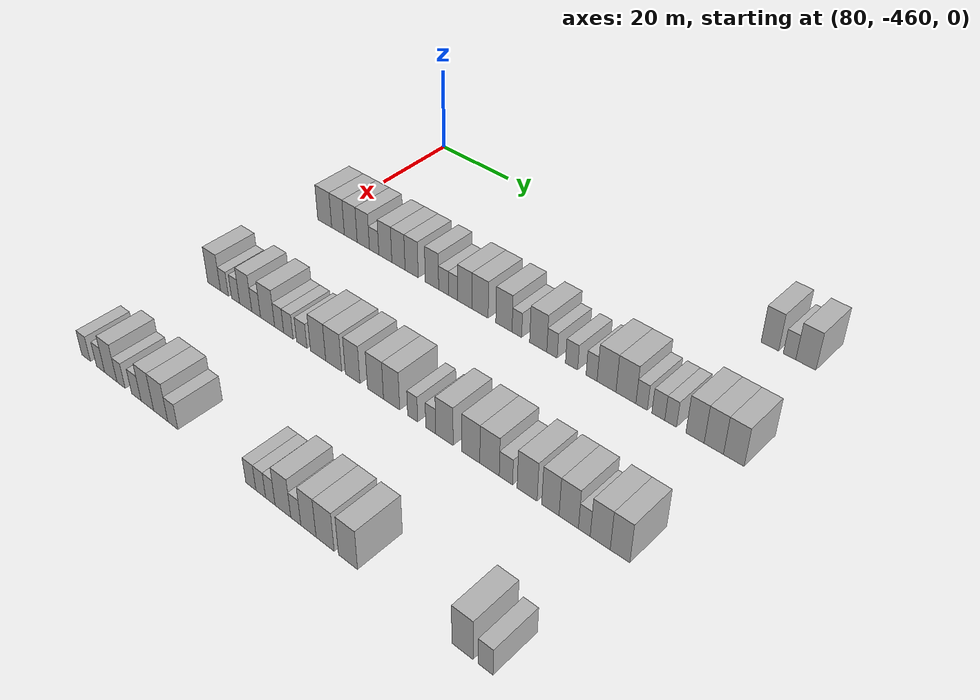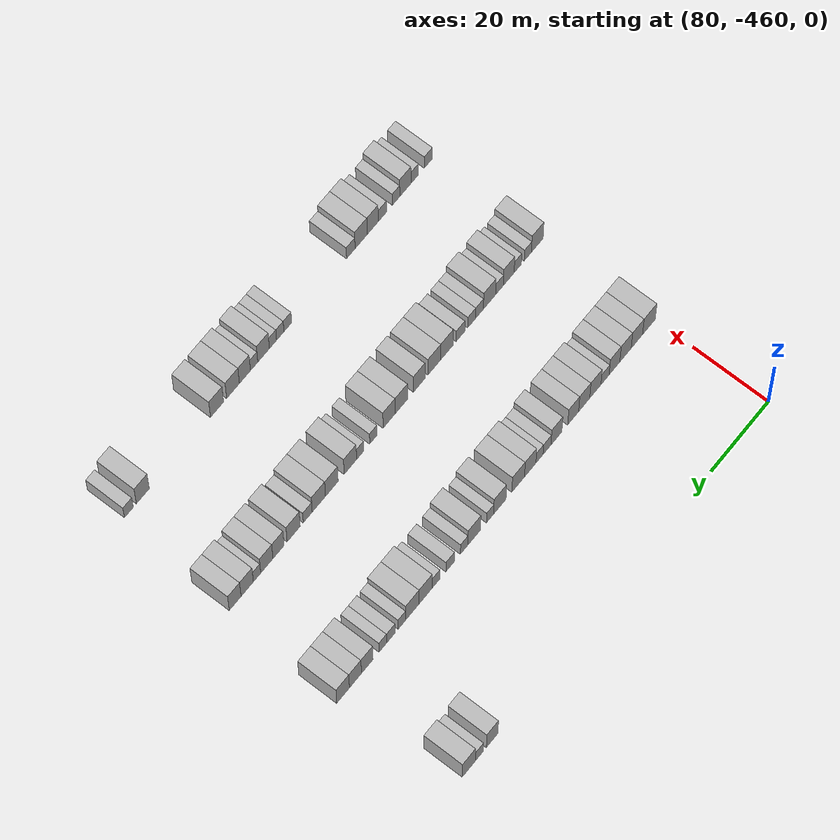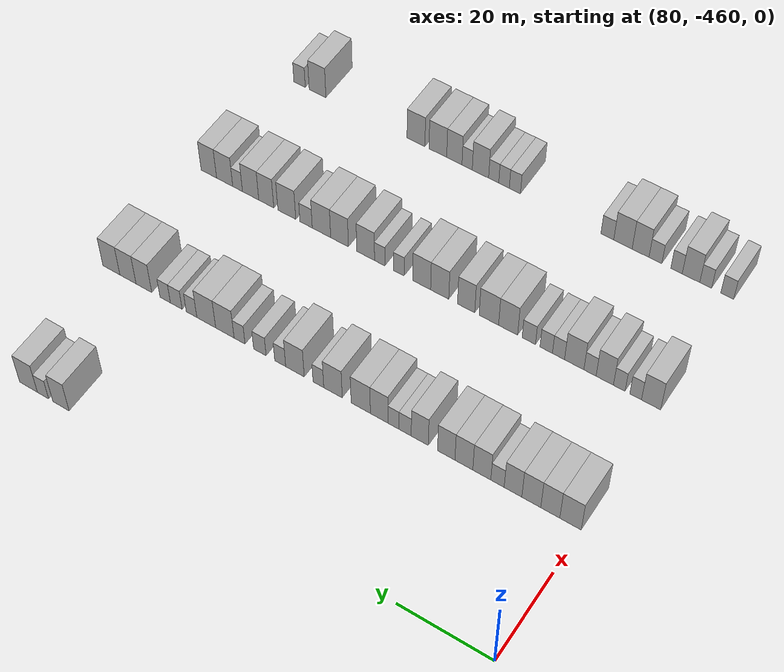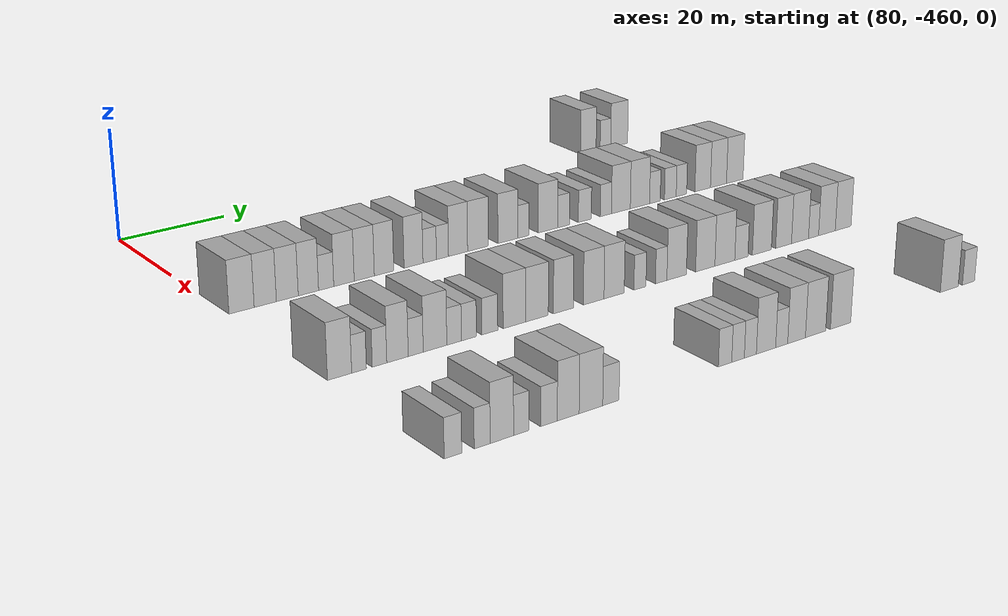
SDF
<sdf version="1.6">
 <world name="default">
  <model name="building_461">
   <static>1</static>
   <pose>85.0000 -365.3935 0 0.000000 0.000000 0.000000</pose>
   <link name="link">
    <pose>0 0 4.50 0 0 0</pose>
    <collision name="collision"><geometry><box><size>10.0000 3.8703 9.0000</size></box></geometry></collision>
    <visual name="visual">
     <cast_shadows>0</cast_shadows>
     <geometry><box><size>10.0000 3.8703 9.0000</size></box></geometry>
     <material>
      <script>
       <uri>model://HANNAS_wall/materials/scripts</uri>
       <uri>model://HANNAS_wall/materials/textures</uri>
       <name>vrc/HANNAS_wall</name>
      </script>
     </material>
    </visual>
   </link>
  </model>
  <model name="building_462">
   <static>1</static>
   <pose>85.0000 -361.1116 0 0.000000 0.000000 0.000000</pose>
   <link name="link">
    <pose>0 0 3.00 0 0 0</pose>
    <collision name="collision"><geometry><box><size>10.0000 2.6935 6.0000</size></box></geometry></collision>
    <visual name="visual">
     <cast_shadows>0</cast_shadows>
     <geometry><box><size>10.0000 2.6935 6.0000</size></box></geometry>
     <material>
      <script>
       <uri>model://HANNAS_wall/materials/scripts</uri>
       <uri>model://HANNAS_wall/materials/textures</uri>
       <name>vrc/HANNAS_wall</name>
      </script>
     </material>
    </visual>
   </link>
  </model>
  <model name="building_463">
   <static>1</static>
   <pose>85.0000 -357.6168 0 0.000000 0.000000 0.000000</pose>
   <link name="link">
    <pose>0 0 4.50 0 0 0</pose>
    <collision name="collision"><geometry><box><size>10.0000 4.2960 9.0000</size></box></geometry></collision>
    <visual name="visual">
     <cast_shadows>0</cast_shadows>
     <geometry><box><size>10.0000 4.2960 9.0000</size></box></geometry>
     <material>
      <script>
       <uri>model://HANNAS_wall/materials/scripts</uri>
       <uri>model://HANNAS_wall/materials/textures</uri>
       <name>vrc/HANNAS_wall</name>
      </script>
     </material>
    </visual>
   </link>
  </model>
  <model name="building_670">
   <static>1</static>
   <pose>115.0000 -457.7880 0 0.000000 0.000000 0.000000</pose>
   <link name="link">
    <pose>0 0 4.50 0 0 0</pose>
    <collision name="collision"><geometry><box><size>10.0000 4.4239 9.0000</size></box></geometry></collision>
    <visual name="visual">
     <cast_shadows>0</cast_shadows>
     <geometry><box><size>10.0000 4.4239 9.0000</size></box></geometry>
     <material>
      <script>
       <uri>model://HANNAS_wall/materials/scripts</uri>
       <uri>model://HANNAS_wall/materials/textures</uri>
       <name>vrc/HANNAS_wall</name>
      </script>
     </material>
    </visual>
   </link>
  </model>
  <model name="building_671">
   <static>1</static>
   <pose>115.0000 -453.5960 0 0.000000 0.000000 0.000000</pose>
   <link name="link">
    <pose>0 0 4.50 0 0 0</pose>
    <collision name="collision"><geometry><box><size>10.0000 3.9600 9.0000</size></box></geometry></collision>
    <visual name="visual">
     <cast_shadows>0</cast_shadows>
     <geometry><box><size>10.0000 3.9600 9.0000</size></box></geometry>
     <material>
      <script>
       <uri>model://HANNAS_wall/materials/scripts</uri>
       <uri>model://HANNAS_wall/materials/textures</uri>
       <name>vrc/HANNAS_wall</name>
      </script>
     </material>
    </visual>
   </link>
  </model>
  <model name="building_672">
   <static>1</static>
   <pose>115.0000 -449.6367 0 0.000000 0.000000 0.000000</pose>
   <link name="link">
    <pose>0 0 4.50 0 0 0</pose>
    <collision name="collision"><geometry><box><size>10.0000 3.9587 9.0000</size></box></geometry></collision>
    <visual name="visual">
     <cast_shadows>0</cast_shadows>
     <geometry><box><size>10.0000 3.9587 9.0000</size></box></geometry>
     <material>
      <script>
       <uri>model://HANNAS_wall/materials/scripts</uri>
       <uri>model://HANNAS_wall/materials/textures</uri>
       <name>vrc/HANNAS_wall</name>
      </script>
     </material>
    </visual>
   </link>
  </model>
  <model name="building_673">
   <static>1</static>
   <pose>115.0000 -445.7936 0 0.000000 0.000000 0.000000</pose>
   <link name="link">
    <pose>0 0 4.50 0 0 0</pose>
    <collision name="collision"><geometry><box><size>10.0000 3.7274 9.0000</size></box></geometry></collision>
    <visual name="visual">
     <cast_shadows>0</cast_shadows>
     <geometry><box><size>10.0000 3.7274 9.0000</size></box></geometry>
     <material>
      <script>
       <uri>model://HANNAS_wall/materials/scripts</uri>
       <uri>model://HANNAS_wall/materials/textures</uri>
       <name>vrc/HANNAS_wall</name>
      </script>
     </material>
    </visual>
   </link>
  </model>
  <model name="building_674">
   <static>1</static>
   <pose>115.0000 -442.5192 0 0.000000 0.000000 0.000000</pose>
   <link name="link">
    <pose>0 0 3.00 0 0 0</pose>
    <collision name="collision"><geometry><box><size>10.0000 2.8214 6.0000</size></box></geometry></collision>
    <visual name="visual">
     <cast_shadows>0</cast_shadows>
     <geometry><box><size>10.0000 2.8214 6.0000</size></box></geometry>
     <material>
      <script>
       <uri>model://HANNAS_wall/materials/scripts</uri>
       <uri>model://HANNAS_wall/materials/textures</uri>
       <name>vrc/HANNAS_wall</name>
      </script>
     </material>
    </visual>
   </link>
  </model>
  <model name="building_675">
   <static>1</static>
   <pose>115.0000 -439.1853 0 0.000000 0.000000 0.000000</pose>
   <link name="link">
    <pose>0 0 4.50 0 0 0</pose>
    <collision name="collision"><geometry><box><size>10.0000 3.8464 9.0000</size></box></geometry></collision>
    <visual name="visual">
     <cast_shadows>0</cast_shadows>
     <geometry><box><size>10.0000 3.8464 9.0000</size></box></geometry>
     <material>
      <script>
       <uri>model://HANNAS_wall/materials/scripts</uri>
       <uri>model://HANNAS_wall/materials/textures</uri>
       <name>vrc/HANNAS_wall</name>
      </script>
     </material>
    </visual>
   </link>
  </model>
  <model name="building_676">
   <static>1</static>
   <pose>115.0000 -435.3410 0 0.000000 0.000000 0.000000</pose>
   <link name="link">
    <pose>0 0 4.50 0 0 0</pose>
    <collision name="collision"><geometry><box><size>10.0000 3.8421 9.0000</size></box></geometry></collision>
    <visual name="visual">
     <cast_shadows>0</cast_shadows>
     <geometry><box><size>10.0000 3.8421 9.0000</size></box></geometry>
     <material>
      <script>
       <uri>model://HANNAS_wall/materials/scripts</uri>
       <uri>model://HANNAS_wall/materials/textures</uri>
       <name>vrc/HANNAS_wall</name>
      </script>
     </material>
    </visual>
   </link>
  </model>
  <model name="building_677">
   <static>1</static>
   <pose>115.0000 -431.5359 0 0.000000 0.000000 0.000000</pose>
   <link name="link">
    <pose>0 0 4.50 0 0 0</pose>
    <collision name="collision"><geometry><box><size>10.0000 3.7682 9.0000</size></box></geometry></collision>
    <visual name="visual">
     <cast_shadows>0</cast_shadows>
     <geometry><box><size>10.0000 3.7682 9.0000</size></box></geometry>
     <material>
      <script>
       <uri>model://HANNAS_wall/materials/scripts</uri>
       <uri>model://HANNAS_wall/materials/textures</uri>
       <name>vrc/HANNAS_wall</name>
      </script>
     </material>
    </visual>
   </link>
  </model>
  <model name="building_678">
   <static>1</static>
   <pose>115.0000 -425.7799 0 0.000000 0.000000 0.000000</pose>
   <link name="link">
    <pose>0 0 4.50 0 0 0</pose>
    <collision name="collision"><geometry><box><size>10.0000 3.7438 9.0000</size></box></geometry></collision>
    <visual name="visual">
     <cast_shadows>0</cast_shadows>
     <geometry><box><size>10.0000 3.7438 9.0000</size></box></geometry>
     <material>
      <script>
       <uri>model://HANNAS_wall/materials/scripts</uri>
       <uri>model://HANNAS_wall/materials/textures</uri>
       <name>vrc/HANNAS_wall</name>
      </script>
     </material>
    </visual>
   </link>
  </model>
  <model name="building_679">
   <static>1</static>
   <pose>115.0000 -422.5611 0 0.000000 0.000000 0.000000</pose>
   <link name="link">
    <pose>0 0 3.00 0 0 0</pose>
    <collision name="collision"><geometry><box><size>10.0000 2.6939 6.0000</size></box></geometry></collision>
    <visual name="visual">
     <cast_shadows>0</cast_shadows>
     <geometry><box><size>10.0000 2.6939 6.0000</size></box></geometry>
     <material>
      <script>
       <uri>model://HANNAS_wall/materials/scripts</uri>
       <uri>model://HANNAS_wall/materials/textures</uri>
       <name>vrc/HANNAS_wall</name>
      </script>
     </material>
    </visual>
   </link>
  </model>
  <model name="building_680">
   <static>1</static>
   <pose>115.0000 -419.9979 0 0.000000 0.000000 0.000000</pose>
   <link name="link">
    <pose>0 0 3.00 0 0 0</pose>
    <collision name="collision"><geometry><box><size>10.0000 2.4324 6.0000</size></box></geometry></collision>
    <visual name="visual">
     <cast_shadows>0</cast_shadows>
     <geometry><box><size>10.0000 2.4324 6.0000</size></box></geometry>
     <material>
      <script>
       <uri>model://HANNAS_wall/materials/scripts</uri>
       <uri>model://HANNAS_wall/materials/textures</uri>
       <name>vrc/HANNAS_wall</name>
      </script>
     </material>
    </visual>
   </link>
  </model>
  <model name="building_681">
   <static>1</static>
   <pose>115.0000 -416.8314 0 0.000000 0.000000 0.000000</pose>
   <link name="link">
    <pose>0 0 4.50 0 0 0</pose>
    <collision name="collision"><geometry><box><size>10.0000 3.9007 9.0000</size></box></geometry></collision>
    <visual name="visual">
     <cast_shadows>0</cast_shadows>
     <geometry><box><size>10.0000 3.9007 9.0000</size></box></geometry>
     <material>
      <script>
       <uri>model://HANNAS_wall/materials/scripts</uri>
       <uri>model://HANNAS_wall/materials/textures</uri>
       <name>vrc/HANNAS_wall</name>
      </script>
     </material>
    </visual>
   </link>
  </model>
  <model name="building_682">
   <static>1</static>
   <pose>115.0000 -412.7275 0 0.000000 0.000000 0.000000</pose>
   <link name="link">
    <pose>0 0 4.50 0 0 0</pose>
    <collision name="collision"><geometry><box><size>10.0000 4.3071 9.0000</size></box></geometry></collision>
    <visual name="visual">
     <cast_shadows>0</cast_shadows>
     <geometry><box><size>10.0000 4.3071 9.0000</size></box></geometry>
     <material>
      <script>
       <uri>model://HANNAS_wall/materials/scripts</uri>
       <uri>model://HANNAS_wall/materials/textures</uri>
       <name>vrc/HANNAS_wall</name>
      </script>
     </material>
    </visual>
   </link>
  </model>
  <model name="building_683">
   <static>1</static>
   <pose>115.0000 -406.4836 0 0.000000 0.000000 0.000000</pose>
   <link name="link">
    <pose>0 0 4.50 0 0 0</pose>
    <collision name="collision"><geometry><box><size>10.0000 4.1806 9.0000</size></box></geometry></collision>
    <visual name="visual">
     <cast_shadows>0</cast_shadows>
     <geometry><box><size>10.0000 4.1806 9.0000</size></box></geometry>
     <material>
      <script>
       <uri>model://HANNAS_wall/materials/scripts</uri>
       <uri>model://HANNAS_wall/materials/textures</uri>
       <name>vrc/HANNAS_wall</name>
      </script>
     </material>
    </visual>
   </link>
  </model>
  <model name="building_684">
   <static>1</static>
   <pose>115.0000 -403.1724 0 0.000000 0.000000 0.000000</pose>
   <link name="link">
    <pose>0 0 3.00 0 0 0</pose>
    <collision name="collision"><geometry><box><size>10.0000 2.4419 6.0000</size></box></geometry></collision>
    <visual name="visual">
     <cast_shadows>0</cast_shadows>
     <geometry><box><size>10.0000 2.4419 6.0000</size></box></geometry>
     <material>
      <script>
       <uri>model://HANNAS_wall/materials/scripts</uri>
       <uri>model://HANNAS_wall/materials/textures</uri>
       <name>vrc/HANNAS_wall</name>
      </script>
     </material>
    </visual>
   </link>
  </model>
  <model name="building_685">
   <static>1</static>
   <pose>115.0000 -397.8206 0 0.000000 0.000000 0.000000</pose>
   <link name="link">
    <pose>0 0 4.50 0 0 0</pose>
    <collision name="collision"><geometry><box><size>10.0000 4.2617 9.0000</size></box></geometry></collision>
    <visual name="visual">
     <cast_shadows>0</cast_shadows>
     <geometry><box><size>10.0000 4.2617 9.0000</size></box></geometry>
     <material>
      <script>
       <uri>model://HANNAS_wall/materials/scripts</uri>
       <uri>model://HANNAS_wall/materials/textures</uri>
       <name>vrc/HANNAS_wall</name>
      </script>
     </material>
    </visual>
   </link>
  </model>
  <model name="building_686">
   <static>1</static>
   <pose>115.0000 -394.4235 0 0.000000 0.000000 0.000000</pose>
   <link name="link">
    <pose>0 0 3.00 0 0 0</pose>
    <collision name="collision"><geometry><box><size>10.0000 2.5325 6.0000</size></box></geometry></collision>
    <visual name="visual">
     <cast_shadows>0</cast_shadows>
     <geometry><box><size>10.0000 2.5325 6.0000</size></box></geometry>
     <material>
      <script>
       <uri>model://HANNAS_wall/materials/scripts</uri>
       <uri>model://HANNAS_wall/materials/textures</uri>
       <name>vrc/HANNAS_wall</name>
      </script>
     </material>
    </visual>
   </link>
  </model>
  <model name="building_687">
   <static>1</static>
   <pose>115.0000 -389.7004 0 0.000000 0.000000 0.000000</pose>
   <link name="link">
    <pose>0 0 3.00 0 0 0</pose>
    <collision name="collision"><geometry><box><size>10.0000 2.9137 6.0000</size></box></geometry></collision>
    <visual name="visual">
     <cast_shadows>0</cast_shadows>
     <geometry><box><size>10.0000 2.9137 6.0000</size></box></geometry>
     <material>
      <script>
       <uri>model://HANNAS_wall/materials/scripts</uri>
       <uri>model://HANNAS_wall/materials/textures</uri>
       <name>vrc/HANNAS_wall</name>
      </script>
     </material>
    </visual>
   </link>
  </model>
  <model name="building_688">
   <static>1</static>
   <pose>115.0000 -384.9599 0 0.000000 0.000000 0.000000</pose>
   <link name="link">
    <pose>0 0 3.00 0 0 0</pose>
    <collision name="collision"><geometry><box><size>10.0000 2.5671 6.0000</size></box></geometry></collision>
    <visual name="visual">
     <cast_shadows>0</cast_shadows>
     <geometry><box><size>10.0000 2.5671 6.0000</size></box></geometry>
     <material>
      <script>
       <uri>model://HANNAS_wall/materials/scripts</uri>
       <uri>model://HANNAS_wall/materials/textures</uri>
       <name>vrc/HANNAS_wall</name>
      </script>
     </material>
    </visual>
   </link>
  </model>
  <model name="building_689">
   <static>1</static>
   <pose>115.0000 -381.4997 0 0.000000 0.000000 0.000000</pose>
   <link name="link">
    <pose>0 0 4.50 0 0 0</pose>
    <collision name="collision"><geometry><box><size>10.0000 4.3533 9.0000</size></box></geometry></collision>
    <visual name="visual">
     <cast_shadows>0</cast_shadows>
     <geometry><box><size>10.0000 4.3533 9.0000</size></box></geometry>
     <material>
      <script>
       <uri>model://HANNAS_wall/materials/scripts</uri>
       <uri>model://HANNAS_wall/materials/textures</uri>
       <name>vrc/HANNAS_wall</name>
      </script>
     </material>
    </visual>
   </link>
  </model>
  <model name="building_690">
   <static>1</static>
   <pose>115.0000 -377.0731 0 0.000000 0.000000 0.000000</pose>
   <link name="link">
    <pose>0 0 4.50 0 0 0</pose>
    <collision name="collision"><geometry><box><size>10.0000 4.4998 9.0000</size></box></geometry></collision>
    <visual name="visual">
     <cast_shadows>0</cast_shadows>
     <geometry><box><size>10.0000 4.4998 9.0000</size></box></geometry>
     <material>
      <script>
       <uri>model://HANNAS_wall/materials/scripts</uri>
       <uri>model://HANNAS_wall/materials/textures</uri>
       <name>vrc/HANNAS_wall</name>
      </script>
     </material>
    </visual>
   </link>
  </model>
  <model name="building_691">
   <static>1</static>
   <pose>115.0000 -373.5569 0 0.000000 0.000000 0.000000</pose>
   <link name="link">
    <pose>0 0 3.00 0 0 0</pose>
    <collision name="collision"><geometry><box><size>10.0000 2.5327 6.0000</size></box></geometry></collision>
    <visual name="visual">
     <cast_shadows>0</cast_shadows>
     <geometry><box><size>10.0000 2.5327 6.0000</size></box></geometry>
     <material>
      <script>
       <uri>model://HANNAS_wall/materials/scripts</uri>
       <uri>model://HANNAS_wall/materials/textures</uri>
       <name>vrc/HANNAS_wall</name>
      </script>
     </material>
    </visual>
   </link>
  </model>
  <model name="building_692">
   <static>1</static>
   <pose>115.0000 -369.8812 0 0.000000 0.000000 0.000000</pose>
   <link name="link">
    <pose>0 0 3.00 0 0 0</pose>
    <collision name="collision"><geometry><box><size>10.0000 2.8186 6.0000</size></box></geometry></collision>
    <visual name="visual">
     <cast_shadows>0</cast_shadows>
     <geometry><box><size>10.0000 2.8186 6.0000</size></box></geometry>
     <material>
      <script>
       <uri>model://HANNAS_wall/materials/scripts</uri>
       <uri>model://HANNAS_wall/materials/textures</uri>
       <name>vrc/HANNAS_wall</name>
      </script>
     </material>
    </visual>
   </link>
  </model>
  <model name="building_693">
   <static>1</static>
   <pose>115.0000 -367.2064 0 0.000000 0.000000 0.000000</pose>
   <link name="link">
    <pose>0 0 3.00 0 0 0</pose>
    <collision name="collision"><geometry><box><size>10.0000 2.5311 6.0000</size></box></geometry></collision>
    <visual name="visual">
     <cast_shadows>0</cast_shadows>
     <geometry><box><size>10.0000 2.5311 6.0000</size></box></geometry>
     <material>
      <script>
       <uri>model://HANNAS_wall/materials/scripts</uri>
       <uri>model://HANNAS_wall/materials/textures</uri>
       <name>vrc/HANNAS_wall</name>
      </script>
     </material>
    </visual>
   </link>
  </model>
  <model name="building_694">
   <static>1</static>
   <pose>115.0000 -362.0194 0 0.000000 0.000000 0.000000</pose>
   <link name="link">
    <pose>0 0 4.50 0 0 0</pose>
    <collision name="collision"><geometry><box><size>10.0000 3.8429 9.0000</size></box></geometry></collision>
    <visual name="visual">
     <cast_shadows>0</cast_shadows>
     <geometry><box><size>10.0000 3.8429 9.0000</size></box></geometry>
     <material>
      <script>
       <uri>model://HANNAS_wall/materials/scripts</uri>
       <uri>model://HANNAS_wall/materials/textures</uri>
       <name>vrc/HANNAS_wall</name>
      </script>
     </material>
    </visual>
   </link>
  </model>
  <model name="building_695">
   <static>1</static>
   <pose>115.0000 -358.1087 0 0.000000 0.000000 0.000000</pose>
   <link name="link">
    <pose>0 0 4.50 0 0 0</pose>
    <collision name="collision"><geometry><box><size>10.0000 3.9783 9.0000</size></box></geometry></collision>
    <visual name="visual">
     <cast_shadows>0</cast_shadows>
     <geometry><box><size>10.0000 3.9783 9.0000</size></box></geometry>
     <material>
      <script>
       <uri>model://HANNAS_wall/materials/scripts</uri>
       <uri>model://HANNAS_wall/materials/textures</uri>
       <name>vrc/HANNAS_wall</name>
      </script>
     </material>
    </visual>
   </link>
  </model>
  <model name="building_696">
   <static>1</static>
   <pose>115.0000 -354.0229 0 0.000000 0.000000 0.000000</pose>
   <link name="link">
    <pose>0 0 4.50 0 0 0</pose>
    <collision name="collision"><geometry><box><size>10.0000 4.1934 9.0000</size></box></geometry></collision>
    <visual name="visual">
     <cast_shadows>0</cast_shadows>
     <geometry><box><size>10.0000 4.1934 9.0000</size></box></geometry>
     <material>
      <script>
       <uri>model://HANNAS_wall/materials/scripts</uri>
       <uri>model://HANNAS_wall/materials/textures</uri>
       <name>vrc/HANNAS_wall</name>
      </script>
     </material>
    </visual>
   </link>
  </model>
  <model name="building_895">
   <static>1</static>
   <pose>145.0000 -457.9725 0 0.000000 0.000000 0.000000</pose>
   <link name="link">
    <pose>0 0 4.50 0 0 0</pose>
    <collision name="collision"><geometry><box><size>10.0000 4.0549 9.0000</size></box></geometry></collision>
    <visual name="visual">
     <cast_shadows>0</cast_shadows>
     <geometry><box><size>10.0000 4.0549 9.0000</size></box></geometry>
     <material>
      <script>
       <uri>model://HANNAS_wall/materials/scripts</uri>
       <uri>model://HANNAS_wall/materials/textures</uri>
       <name>vrc/HANNAS_wall</name>
      </script>
     </material>
    </visual>
   </link>
  </model>
  <model name="building_896">
   <static>1</static>
   <pose>145.0000 -454.6959 0 0.000000 0.000000 0.000000</pose>
   <link name="link">
    <pose>0 0 3.00 0 0 0</pose>
    <collision name="collision"><geometry><box><size>10.0000 2.4983 6.0000</size></box></geometry></collision>
    <visual name="visual">
     <cast_shadows>0</cast_shadows>
     <geometry><box><size>10.0000 2.4983 6.0000</size></box></geometry>
     <material>
      <script>
       <uri>model://HANNAS_wall/materials/scripts</uri>
       <uri>model://HANNAS_wall/materials/textures</uri>
       <name>vrc/HANNAS_wall</name>
      </script>
     </material>
    </visual>
   </link>
  </model>
  <model name="building_897">
   <static>1</static>
   <pose>145.0000 -451.2004 0 0.000000 0.000000 0.000000</pose>
   <link name="link">
    <pose>0 0 3.00 0 0 0</pose>
    <collision name="collision"><geometry><box><size>10.0000 2.4928 6.0000</size></box></geometry></collision>
    <visual name="visual">
     <cast_shadows>0</cast_shadows>
     <geometry><box><size>10.0000 2.4928 6.0000</size></box></geometry>
     <material>
      <script>
       <uri>model://HANNAS_wall/materials/scripts</uri>
       <uri>model://HANNAS_wall/materials/textures</uri>
       <name>vrc/HANNAS_wall</name>
      </script>
     </material>
    </visual>
   </link>
  </model>
  <model name="building_898">
   <static>1</static>
   <pose>145.0000 -448.0834 0 0.000000 0.000000 0.000000</pose>
   <link name="link">
    <pose>0 0 4.50 0 0 0</pose>
    <collision name="collision"><geometry><box><size>10.0000 3.7411 9.0000</size></box></geometry></collision>
    <visual name="visual">
     <cast_shadows>0</cast_shadows>
     <geometry><box><size>10.0000 3.7411 9.0000</size></box></geometry>
     <material>
      <script>
       <uri>model://HANNAS_wall/materials/scripts</uri>
       <uri>model://HANNAS_wall/materials/textures</uri>
       <name>vrc/HANNAS_wall</name>
      </script>
     </material>
    </visual>
   </link>
  </model>
  <model name="building_899">
   <static>1</static>
   <pose>145.0000 -444.8923 0 0.000000 0.000000 0.000000</pose>
   <link name="link">
    <pose>0 0 3.00 0 0 0</pose>
    <collision name="collision"><geometry><box><size>10.0000 2.6411 6.0000</size></box></geometry></collision>
    <visual name="visual">
     <cast_shadows>0</cast_shadows>
     <geometry><box><size>10.0000 2.6411 6.0000</size></box></geometry>
     <material>
      <script>
       <uri>model://HANNAS_wall/materials/scripts</uri>
       <uri>model://HANNAS_wall/materials/textures</uri>
       <name>vrc/HANNAS_wall</name>
      </script>
     </material>
    </visual>
   </link>
  </model>
  <model name="building_900">
   <static>1</static>
   <pose>145.0000 -441.4595 0 0.000000 0.000000 0.000000</pose>
   <link name="link">
    <pose>0 0 4.50 0 0 0</pose>
    <collision name="collision"><geometry><box><size>10.0000 4.2245 9.0000</size></box></geometry></collision>
    <visual name="visual">
     <cast_shadows>0</cast_shadows>
     <geometry><box><size>10.0000 4.2245 9.0000</size></box></geometry>
     <material>
      <script>
       <uri>model://HANNAS_wall/materials/scripts</uri>
       <uri>model://HANNAS_wall/materials/textures</uri>
       <name>vrc/HANNAS_wall</name>
      </script>
     </material>
    </visual>
   </link>
  </model>
  <model name="building_901">
   <static>1</static>
   <pose>145.0000 -438.0200 0 0.000000 0.000000 0.000000</pose>
   <link name="link">
    <pose>0 0 3.00 0 0 0</pose>
    <collision name="collision"><geometry><box><size>10.0000 2.6546 6.0000</size></box></geometry></collision>
    <visual name="visual">
     <cast_shadows>0</cast_shadows>
     <geometry><box><size>10.0000 2.6546 6.0000</size></box></geometry>
     <material>
      <script>
       <uri>model://HANNAS_wall/materials/scripts</uri>
       <uri>model://HANNAS_wall/materials/textures</uri>
       <name>vrc/HANNAS_wall</name>
      </script>
     </material>
    </visual>
   </link>
  </model>
  <model name="building_902">
   <static>1</static>
   <pose>145.0000 -435.3219 0 0.000000 0.000000 0.000000</pose>
   <link name="link">
    <pose>0 0 3.00 0 0 0</pose>
    <collision name="collision"><geometry><box><size>10.0000 2.7416 6.0000</size></box></geometry></collision>
    <visual name="visual">
     <cast_shadows>0</cast_shadows>
     <geometry><box><size>10.0000 2.7416 6.0000</size></box></geometry>
     <material>
      <script>
       <uri>model://HANNAS_wall/materials/scripts</uri>
       <uri>model://HANNAS_wall/materials/textures</uri>
       <name>vrc/HANNAS_wall</name>
      </script>
     </material>
    </visual>
   </link>
  </model>
  <model name="building_903">
   <static>1</static>
   <pose>145.0000 -431.4687 0 0.000000 0.000000 0.000000</pose>
   <link name="link">
    <pose>0 0 3.00 0 0 0</pose>
    <collision name="collision"><geometry><box><size>10.0000 2.9647 6.0000</size></box></geometry></collision>
    <visual name="visual">
     <cast_shadows>0</cast_shadows>
     <geometry><box><size>10.0000 2.9647 6.0000</size></box></geometry>
     <material>
      <script>
       <uri>model://HANNAS_wall/materials/scripts</uri>
       <uri>model://HANNAS_wall/materials/textures</uri>
       <name>vrc/HANNAS_wall</name>
      </script>
     </material>
    </visual>
   </link>
  </model>
  <model name="building_904">
   <static>1</static>
   <pose>145.0000 -426.8583 0 0.000000 0.000000 0.000000</pose>
   <link name="link">
    <pose>0 0 4.50 0 0 0</pose>
    <collision name="collision"><geometry><box><size>10.0000 4.2561 9.0000</size></box></geometry></collision>
    <visual name="visual">
     <cast_shadows>0</cast_shadows>
     <geometry><box><size>10.0000 4.2561 9.0000</size></box></geometry>
     <material>
      <script>
       <uri>model://HANNAS_wall/materials/scripts</uri>
       <uri>model://HANNAS_wall/materials/textures</uri>
       <name>vrc/HANNAS_wall</name>
      </script>
     </material>
    </visual>
   </link>
  </model>
  <model name="building_905">
   <static>1</static>
   <pose>145.0000 -422.5379 0 0.000000 0.000000 0.000000</pose>
   <link name="link">
    <pose>0 0 4.50 0 0 0</pose>
    <collision name="collision"><geometry><box><size>10.0000 4.3847 9.0000</size></box></geometry></collision>
    <visual name="visual">
     <cast_shadows>0</cast_shadows>
     <geometry><box><size>10.0000 4.3847 9.0000</size></box></geometry>
     <material>
      <script>
       <uri>model://HANNAS_wall/materials/scripts</uri>
       <uri>model://HANNAS_wall/materials/textures</uri>
       <name>vrc/HANNAS_wall</name>
      </script>
     </material>
    </visual>
   </link>
  </model>
  <model name="building_906">
   <static>1</static>
   <pose>145.0000 -417.3886 0 0.000000 0.000000 0.000000</pose>
   <link name="link">
    <pose>0 0 4.50 0 0 0</pose>
    <collision name="collision"><geometry><box><size>10.0000 3.9138 9.0000</size></box></geometry></collision>
    <visual name="visual">
     <cast_shadows>0</cast_shadows>
     <geometry><box><size>10.0000 3.9138 9.0000</size></box></geometry>
     <material>
      <script>
       <uri>model://HANNAS_wall/materials/scripts</uri>
       <uri>model://HANNAS_wall/materials/textures</uri>
       <name>vrc/HANNAS_wall</name>
      </script>
     </material>
    </visual>
   </link>
  </model>
  <model name="building_907">
   <static>1</static>
   <pose>145.0000 -411.3526 0 0.000000 0.000000 0.000000</pose>
   <link name="link">
    <pose>0 0 4.50 0 0 0</pose>
    <collision name="collision"><geometry><box><size>10.0000 4.1582 9.0000</size></box></geometry></collision>
    <visual name="visual">
     <cast_shadows>0</cast_shadows>
     <geometry><box><size>10.0000 4.1582 9.0000</size></box></geometry>
     <material>
      <script>
       <uri>model://HANNAS_wall/materials/scripts</uri>
       <uri>model://HANNAS_wall/materials/textures</uri>
       <name>vrc/HANNAS_wall</name>
      </script>
     </material>
    </visual>
   </link>
  </model>
  <model name="building_908">
   <static>1</static>
   <pose>145.0000 -407.2035 0 0.000000 0.000000 0.000000</pose>
   <link name="link">
    <pose>0 0 4.50 0 0 0</pose>
    <collision name="collision"><geometry><box><size>10.0000 4.1400 9.0000</size></box></geometry></collision>
    <visual name="visual">
     <cast_shadows>0</cast_shadows>
     <geometry><box><size>10.0000 4.1400 9.0000</size></box></geometry>
     <material>
      <script>
       <uri>model://HANNAS_wall/materials/scripts</uri>
       <uri>model://HANNAS_wall/materials/textures</uri>
       <name>vrc/HANNAS_wall</name>
      </script>
     </material>
    </visual>
   </link>
  </model>
  <model name="building_909">
   <static>1</static>
   <pose>145.0000 -401.8818 0 0.000000 0.000000 0.000000</pose>
   <link name="link">
    <pose>0 0 3.00 0 0 0</pose>
    <collision name="collision"><geometry><box><size>10.0000 2.5035 6.0000</size></box></geometry></collision>
    <visual name="visual">
     <cast_shadows>0</cast_shadows>
     <geometry><box><size>10.0000 2.5035 6.0000</size></box></geometry>
     <material>
      <script>
       <uri>model://HANNAS_wall/materials/scripts</uri>
       <uri>model://HANNAS_wall/materials/textures</uri>
       <name>vrc/HANNAS_wall</name>
      </script>
     </material>
    </visual>
   </link>
  </model>
  <model name="building_910">
   <static>1</static>
   <pose>145.0000 -397.4155 0 0.000000 0.000000 0.000000</pose>
   <link name="link">
    <pose>0 0 3.00 0 0 0</pose>
    <collision name="collision"><geometry><box><size>10.0000 2.4292 6.0000</size></box></geometry></collision>
    <visual name="visual">
     <cast_shadows>0</cast_shadows>
     <geometry><box><size>10.0000 2.4292 6.0000</size></box></geometry>
     <material>
      <script>
       <uri>model://HANNAS_wall/materials/scripts</uri>
       <uri>model://HANNAS_wall/materials/textures</uri>
       <name>vrc/HANNAS_wall</name>
      </script>
     </material>
    </visual>
   </link>
  </model>
  <model name="building_911">
   <static>1</static>
   <pose>145.0000 -394.1071 0 0.000000 0.000000 0.000000</pose>
   <link name="link">
    <pose>0 0 4.50 0 0 0</pose>
    <collision name="collision"><geometry><box><size>10.0000 4.1876 9.0000</size></box></geometry></collision>
    <visual name="visual">
     <cast_shadows>0</cast_shadows>
     <geometry><box><size>10.0000 4.1876 9.0000</size></box></geometry>
     <material>
      <script>
       <uri>model://HANNAS_wall/materials/scripts</uri>
       <uri>model://HANNAS_wall/materials/textures</uri>
       <name>vrc/HANNAS_wall</name>
      </script>
     </material>
    </visual>
   </link>
  </model>
  <model name="building_912">
   <static>1</static>
   <pose>145.0000 -387.8924 0 0.000000 0.000000 0.000000</pose>
   <link name="link">
    <pose>0 0 4.50 0 0 0</pose>
    <collision name="collision"><geometry><box><size>10.0000 4.2418 9.0000</size></box></geometry></collision>
    <visual name="visual">
     <cast_shadows>0</cast_shadows>
     <geometry><box><size>10.0000 4.2418 9.0000</size></box></geometry>
     <material>
      <script>
       <uri>model://HANNAS_wall/materials/scripts</uri>
       <uri>model://HANNAS_wall/materials/textures</uri>
       <name>vrc/HANNAS_wall</name>
      </script>
     </material>
    </visual>
   </link>
  </model>
  <model name="building_913">
   <static>1</static>
   <pose>145.0000 -383.5534 0 0.000000 0.000000 0.000000</pose>
   <link name="link">
    <pose>0 0 4.50 0 0 0</pose>
    <collision name="collision"><geometry><box><size>10.0000 4.4362 9.0000</size></box></geometry></collision>
    <visual name="visual">
     <cast_shadows>0</cast_shadows>
     <geometry><box><size>10.0000 4.4362 9.0000</size></box></geometry>
     <material>
      <script>
       <uri>model://HANNAS_wall/materials/scripts</uri>
       <uri>model://HANNAS_wall/materials/textures</uri>
       <name>vrc/HANNAS_wall</name>
      </script>
     </material>
    </visual>
   </link>
  </model>
  <model name="building_914">
   <static>1</static>
   <pose>145.0000 -379.8425 0 0.000000 0.000000 0.000000</pose>
   <link name="link">
    <pose>0 0 3.00 0 0 0</pose>
    <collision name="collision"><geometry><box><size>10.0000 2.9856 6.0000</size></box></geometry></collision>
    <visual name="visual">
     <cast_shadows>0</cast_shadows>
     <geometry><box><size>10.0000 2.9856 6.0000</size></box></geometry>
     <material>
      <script>
       <uri>model://HANNAS_wall/materials/scripts</uri>
       <uri>model://HANNAS_wall/materials/textures</uri>
       <name>vrc/HANNAS_wall</name>
      </script>
     </material>
    </visual>
   </link>
  </model>
  <model name="building_915">
   <static>1</static>
   <pose>145.0000 -375.1653 0 0.000000 0.000000 0.000000</pose>
   <link name="link">
    <pose>0 0 4.50 0 0 0</pose>
    <collision name="collision"><geometry><box><size>10.0000 4.3688 9.0000</size></box></geometry></collision>
    <visual name="visual">
     <cast_shadows>0</cast_shadows>
     <geometry><box><size>10.0000 4.3688 9.0000</size></box></geometry>
     <material>
      <script>
       <uri>model://HANNAS_wall/materials/scripts</uri>
       <uri>model://HANNAS_wall/materials/textures</uri>
       <name>vrc/HANNAS_wall</name>
      </script>
     </material>
    </visual>
   </link>
  </model>
  <model name="building_916">
   <static>1</static>
   <pose>145.0000 -370.1293 0 0.000000 0.000000 0.000000</pose>
   <link name="link">
    <pose>0 0 4.50 0 0 0</pose>
    <collision name="collision"><geometry><box><size>10.0000 3.7034 9.0000</size></box></geometry></collision>
    <visual name="visual">
     <cast_shadows>0</cast_shadows>
     <geometry><box><size>10.0000 3.7034 9.0000</size></box></geometry>
     <material>
      <script>
       <uri>model://HANNAS_wall/materials/scripts</uri>
       <uri>model://HANNAS_wall/materials/textures</uri>
       <name>vrc/HANNAS_wall</name>
      </script>
     </material>
    </visual>
   </link>
  </model>
  <model name="building_917">
   <static>1</static>
   <pose>145.0000 -366.2576 0 0.000000 0.000000 0.000000</pose>
   <link name="link">
    <pose>0 0 4.50 0 0 0</pose>
    <collision name="collision"><geometry><box><size>10.0000 4.0399 9.0000</size></box></geometry></collision>
    <visual name="visual">
     <cast_shadows>0</cast_shadows>
     <geometry><box><size>10.0000 4.0399 9.0000</size></box></geometry>
     <material>
      <script>
       <uri>model://HANNAS_wall/materials/scripts</uri>
       <uri>model://HANNAS_wall/materials/textures</uri>
       <name>vrc/HANNAS_wall</name>
      </script>
     </material>
    </visual>
   </link>
  </model>
  <model name="building_918">
   <static>1</static>
   <pose>145.0000 -363.0270 0 0.000000 0.000000 0.000000</pose>
   <link name="link">
    <pose>0 0 3.00 0 0 0</pose>
    <collision name="collision"><geometry><box><size>10.0000 2.4214 6.0000</size></box></geometry></collision>
    <visual name="visual">
     <cast_shadows>0</cast_shadows>
     <geometry><box><size>10.0000 2.4214 6.0000</size></box></geometry>
     <material>
      <script>
       <uri>model://HANNAS_wall/materials/scripts</uri>
       <uri>model://HANNAS_wall/materials/textures</uri>
       <name>vrc/HANNAS_wall</name>
      </script>
     </material>
    </visual>
   </link>
  </model>
  <model name="building_919">
   <static>1</static>
   <pose>145.0000 -359.7924 0 0.000000 0.000000 0.000000</pose>
   <link name="link">
    <pose>0 0 4.50 0 0 0</pose>
    <collision name="collision"><geometry><box><size>10.0000 4.0478 9.0000</size></box></geometry></collision>
    <visual name="visual">
     <cast_shadows>0</cast_shadows>
     <geometry><box><size>10.0000 4.0478 9.0000</size></box></geometry>
     <material>
      <script>
       <uri>model://HANNAS_wall/materials/scripts</uri>
       <uri>model://HANNAS_wall/materials/textures</uri>
       <name>vrc/HANNAS_wall</name>
      </script>
     </material>
    </visual>
   </link>
  </model>
  <model name="building_920">
   <static>1</static>
   <pose>145.0000 -355.8238 0 0.000000 0.000000 0.000000</pose>
   <link name="link">
    <pose>0 0 4.50 0 0 0</pose>
    <collision name="collision"><geometry><box><size>10.0000 3.8893 9.0000</size></box></geometry></collision>
    <visual name="visual">
     <cast_shadows>0</cast_shadows>
     <geometry><box><size>10.0000 3.8893 9.0000</size></box></geometry>
     <material>
      <script>
       <uri>model://HANNAS_wall/materials/scripts</uri>
       <uri>model://HANNAS_wall/materials/textures</uri>
       <name>vrc/HANNAS_wall</name>
      </script>
     </material>
    </visual>
   </link>
  </model>
  <model name="building_1127">
   <static>1</static>
   <pose>175.0000 -458.6006 0 0.000000 0.000000 0.000000</pose>
   <link name="link">
    <pose>0 0 3.00 0 0 0</pose>
    <collision name="collision"><geometry><box><size>10.0000 2.7987 6.0000</size></box></geometry></collision>
    <visual name="visual">
     <cast_shadows>0</cast_shadows>
     <geometry><box><size>10.0000 2.7987 6.0000</size></box></geometry>
     <material>
      <script>
       <uri>model://HANNAS_wall/materials/scripts</uri>
       <uri>model://HANNAS_wall/materials/textures</uri>
       <name>vrc/HANNAS_wall</name>
      </script>
     </material>
    </visual>
   </link>
  </model>
  <model name="building_1128">
   <static>1</static>
   <pose>175.0000 -453.9015 0 0.000000 0.000000 0.000000</pose>
   <link name="link">
    <pose>0 0 3.00 0 0 0</pose>
    <collision name="collision"><geometry><box><size>10.0000 2.5996 6.0000</size></box></geometry></collision>
    <visual name="visual">
     <cast_shadows>0</cast_shadows>
     <geometry><box><size>10.0000 2.5996 6.0000</size></box></geometry>
     <material>
      <script>
       <uri>model://HANNAS_wall/materials/scripts</uri>
       <uri>model://HANNAS_wall/materials/textures</uri>
       <name>vrc/HANNAS_wall</name>
      </script>
     </material>
    </visual>
   </link>
  </model>
  <model name="building_1129">
   <static>1</static>
   <pose>175.0000 -450.6696 0 0.000000 0.000000 0.000000</pose>
   <link name="link">
    <pose>0 0 4.50 0 0 0</pose>
    <collision name="collision"><geometry><box><size>10.0000 3.8642 9.0000</size></box></geometry></collision>
    <visual name="visual">
     <cast_shadows>0</cast_shadows>
     <geometry><box><size>10.0000 3.8642 9.0000</size></box></geometry>
     <material>
      <script>
       <uri>model://HANNAS_wall/materials/scripts</uri>
       <uri>model://HANNAS_wall/materials/textures</uri>
       <name>vrc/HANNAS_wall</name>
      </script>
     </material>
    </visual>
   </link>
  </model>
  <model name="building_1130">
   <static>1</static>
   <pose>175.0000 -447.4712 0 0.000000 0.000000 0.000000</pose>
   <link name="link">
    <pose>0 0 3.00 0 0 0</pose>
    <collision name="collision"><geometry><box><size>10.0000 2.5326 6.0000</size></box></geometry></collision>
    <visual name="visual">
     <cast_shadows>0</cast_shadows>
     <geometry><box><size>10.0000 2.5326 6.0000</size></box></geometry>
     <material>
      <script>
       <uri>model://HANNAS_wall/materials/scripts</uri>
       <uri>model://HANNAS_wall/materials/textures</uri>
       <name>vrc/HANNAS_wall</name>
      </script>
     </material>
    </visual>
   </link>
  </model>
  <model name="building_1131">
   <static>1</static>
   <pose>175.0000 -442.7748 0 0.000000 0.000000 0.000000</pose>
   <link name="link">
    <pose>0 0 3.00 0 0 0</pose>
    <collision name="collision"><geometry><box><size>10.0000 2.8600 6.0000</size></box></geometry></collision>
    <visual name="visual">
     <cast_shadows>0</cast_shadows>
     <geometry><box><size>10.0000 2.8600 6.0000</size></box></geometry>
     <material>
      <script>
       <uri>model://HANNAS_wall/materials/scripts</uri>
       <uri>model://HANNAS_wall/materials/textures</uri>
       <name>vrc/HANNAS_wall</name>
      </script>
     </material>
    </visual>
   </link>
  </model>
  <model name="building_1132">
   <static>1</static>
   <pose>175.0000 -439.4548 0 0.000000 0.000000 0.000000</pose>
   <link name="link">
    <pose>0 0 4.50 0 0 0</pose>
    <collision name="collision"><geometry><box><size>10.0000 3.7801 9.0000</size></box></geometry></collision>
    <visual name="visual">
     <cast_shadows>0</cast_shadows>
     <geometry><box><size>10.0000 3.7801 9.0000</size></box></geometry>
     <material>
      <script>
       <uri>model://HANNAS_wall/materials/scripts</uri>
       <uri>model://HANNAS_wall/materials/textures</uri>
       <name>vrc/HANNAS_wall</name>
      </script>
     </material>
    </visual>
   </link>
  </model>
  <model name="building_1133">
   <static>1</static>
   <pose>175.0000 -435.4846 0 0.000000 0.000000 0.000000</pose>
   <link name="link">
    <pose>0 0 4.50 0 0 0</pose>
    <collision name="collision"><geometry><box><size>10.0000 4.1603 9.0000</size></box></geometry></collision>
    <visual name="visual">
     <cast_shadows>0</cast_shadows>
     <geometry><box><size>10.0000 4.1603 9.0000</size></box></geometry>
     <material>
      <script>
       <uri>model://HANNAS_wall/materials/scripts</uri>
       <uri>model://HANNAS_wall/materials/textures</uri>
       <name>vrc/HANNAS_wall</name>
      </script>
     </material>
    </visual>
   </link>
  </model>
  <model name="building_1134">
   <static>1</static>
   <pose>175.0000 -431.9470 0 0.000000 0.000000 0.000000</pose>
   <link name="link">
    <pose>0 0 3.00 0 0 0</pose>
    <collision name="collision"><geometry><box><size>10.0000 2.9150 6.0000</size></box></geometry></collision>
    <visual name="visual">
     <cast_shadows>0</cast_shadows>
     <geometry><box><size>10.0000 2.9150 6.0000</size></box></geometry>
     <material>
      <script>
       <uri>model://HANNAS_wall/materials/scripts</uri>
       <uri>model://HANNAS_wall/materials/textures</uri>
       <name>vrc/HANNAS_wall</name>
      </script>
     </material>
    </visual>
   </link>
  </model>
  <model name="building_1135">
   <static>1</static>
   <pose>175.0000 -410.5571 0 0.000000 0.000000 0.000000</pose>
   <link name="link">
    <pose>0 0 3.00 0 0 0</pose>
    <collision name="collision"><geometry><box><size>10.0000 2.6216 6.0000</size></box></geometry></collision>
    <visual name="visual">
     <cast_shadows>0</cast_shadows>
     <geometry><box><size>10.0000 2.6216 6.0000</size></box></geometry>
     <material>
      <script>
       <uri>model://HANNAS_wall/materials/scripts</uri>
       <uri>model://HANNAS_wall/materials/textures</uri>
       <name>vrc/HANNAS_wall</name>
      </script>
     </material>
    </visual>
   </link>
  </model>
  <model name="building_1136">
   <static>1</static>
   <pose>175.0000 -407.9982 0 0.000000 0.000000 0.000000</pose>
   <link name="link">
    <pose>0 0 3.00 0 0 0</pose>
    <collision name="collision"><geometry><box><size>10.0000 2.4963 6.0000</size></box></geometry></collision>
    <visual name="visual">
     <cast_shadows>0</cast_shadows>
     <geometry><box><size>10.0000 2.4963 6.0000</size></box></geometry>
     <material>
      <script>
       <uri>model://HANNAS_wall/materials/scripts</uri>
       <uri>model://HANNAS_wall/materials/textures</uri>
       <name>vrc/HANNAS_wall</name>
      </script>
     </material>
    </visual>
   </link>
  </model>
  <model name="building_1137">
   <static>1</static>
   <pose>175.0000 -405.5447 0 0.000000 0.000000 0.000000</pose>
   <link name="link">
    <pose>0 0 3.00 0 0 0</pose>
    <collision name="collision"><geometry><box><size>10.0000 2.4106 6.0000</size></box></geometry></collision>
    <visual name="visual">
     <cast_shadows>0</cast_shadows>
     <geometry><box><size>10.0000 2.4106 6.0000</size></box></geometry>
     <material>
      <script>
       <uri>model://HANNAS_wall/materials/scripts</uri>
       <uri>model://HANNAS_wall/materials/textures</uri>
       <name>vrc/HANNAS_wall</name>
      </script>
     </material>
    </visual>
   </link>
  </model>
  <model name="building_1138">
   <static>1</static>
   <pose>175.0000 -402.3854 0 0.000000 0.000000 0.000000</pose>
   <link name="link">
    <pose>0 0 4.50 0 0 0</pose>
    <collision name="collision"><geometry><box><size>10.0000 3.9080 9.0000</size></box></geometry></collision>
    <visual name="visual">
     <cast_shadows>0</cast_shadows>
     <geometry><box><size>10.0000 3.9080 9.0000</size></box></geometry>
     <material>
      <script>
       <uri>model://HANNAS_wall/materials/scripts</uri>
       <uri>model://HANNAS_wall/materials/textures</uri>
       <name>vrc/HANNAS_wall</name>
      </script>
     </material>
    </visual>
   </link>
  </model>
  <model name="building_1139">
   <static>1</static>
   <pose>175.0000 -399.1986 0 0.000000 0.000000 0.000000</pose>
   <link name="link">
    <pose>0 0 3.00 0 0 0</pose>
    <collision name="collision"><geometry><box><size>10.0000 2.4657 6.0000</size></box></geometry></collision>
    <visual name="visual">
     <cast_shadows>0</cast_shadows>
     <geometry><box><size>10.0000 2.4657 6.0000</size></box></geometry>
     <material>
      <script>
       <uri>model://HANNAS_wall/materials/scripts</uri>
       <uri>model://HANNAS_wall/materials/textures</uri>
       <name>vrc/HANNAS_wall</name>
      </script>
     </material>
    </visual>
   </link>
  </model>
  <model name="building_1140">
   <static>1</static>
   <pose>175.0000 -396.1238 0 0.000000 0.000000 0.000000</pose>
   <link name="link">
    <pose>0 0 4.50 0 0 0</pose>
    <collision name="collision"><geometry><box><size>10.0000 3.6839 9.0000</size></box></geometry></collision>
    <visual name="visual">
     <cast_shadows>0</cast_shadows>
     <geometry><box><size>10.0000 3.6839 9.0000</size></box></geometry>
     <material>
      <script>
       <uri>model://HANNAS_wall/materials/scripts</uri>
       <uri>model://HANNAS_wall/materials/textures</uri>
       <name>vrc/HANNAS_wall</name>
      </script>
     </material>
    </visual>
   </link>
  </model>
  <model name="building_1141">
   <static>1</static>
   <pose>175.0000 -392.1409 0 0.000000 0.000000 0.000000</pose>
   <link name="link">
    <pose>0 0 4.50 0 0 0</pose>
    <collision name="collision"><geometry><box><size>10.0000 4.2819 9.0000</size></box></geometry></collision>
    <visual name="visual">
     <cast_shadows>0</cast_shadows>
     <geometry><box><size>10.0000 4.2819 9.0000</size></box></geometry>
     <material>
      <script>
       <uri>model://HANNAS_wall/materials/scripts</uri>
       <uri>model://HANNAS_wall/materials/textures</uri>
       <name>vrc/HANNAS_wall</name>
      </script>
     </material>
    </visual>
   </link>
  </model>
  <model name="building_1142">
   <static>1</static>
   <pose>175.0000 -386.8101 0 0.000000 0.000000 0.000000</pose>
   <link name="link">
    <pose>0 0 4.50 0 0 0</pose>
    <collision name="collision"><geometry><box><size>10.0000 4.3798 9.0000</size></box></geometry></collision>
    <visual name="visual">
     <cast_shadows>0</cast_shadows>
     <geometry><box><size>10.0000 4.3798 9.0000</size></box></geometry>
     <material>
      <script>
       <uri>model://HANNAS_wall/materials/scripts</uri>
       <uri>model://HANNAS_wall/materials/textures</uri>
       <name>vrc/HANNAS_wall</name>
      </script>
     </material>
    </visual>
   </link>
  </model>
  <model name="building_1143">
   <static>1</static>
   <pose>175.0000 -362.2343 0 0.000000 0.000000 0.000000</pose>
   <link name="link">
    <pose>0 0 4.50 0 0 0</pose>
    <collision name="collision"><geometry><box><size>10.0000 4.2573 9.0000</size></box></geometry></collision>
    <visual name="visual">
     <cast_shadows>0</cast_shadows>
     <geometry><box><size>10.0000 4.2573 9.0000</size></box></geometry>
     <material>
      <script>
       <uri>model://HANNAS_wall/materials/scripts</uri>
       <uri>model://HANNAS_wall/materials/textures</uri>
       <name>vrc/HANNAS_wall</name>
      </script>
     </material>
    </visual>
   </link>
  </model>
  <model name="building_1144">
   <static>1</static>
   <pose>175.0000 -357.6469 0 0.000000 0.000000 0.000000</pose>
   <link name="link">
    <pose>0 0 3.00 0 0 0</pose>
    <collision name="collision"><geometry><box><size>10.0000 2.9175 6.0000</size></box></geometry></collision>
    <visual name="visual">
     <cast_shadows>0</cast_shadows>
     <geometry><box><size>10.0000 2.9175 6.0000</size></box></geometry>
     <material>
      <script>
       <uri>model://HANNAS_wall/materials/scripts</uri>
       <uri>model://HANNAS_wall/materials/textures</uri>
       <name>vrc/HANNAS_wall</name>
      </script>
     </material>
    </visual>
   </link>
  </model>
 </world>
</sdf>
